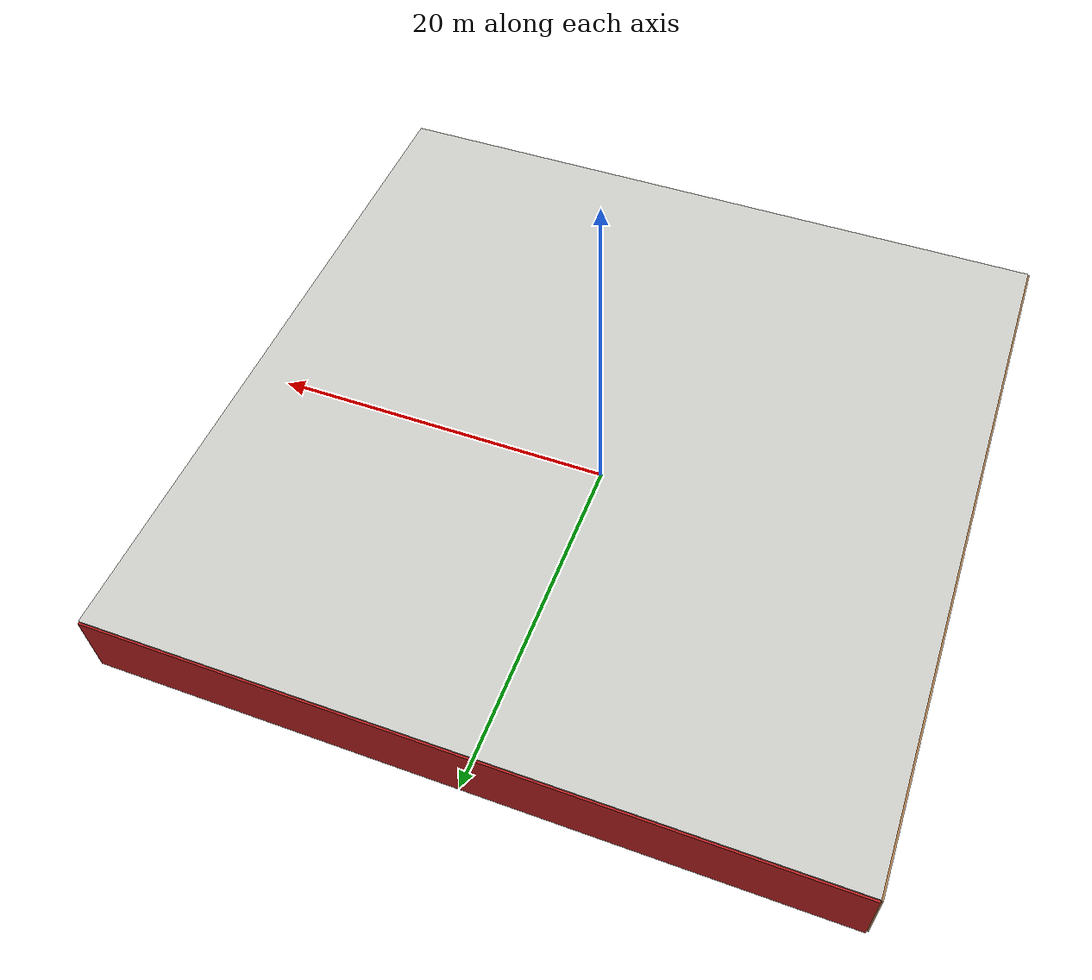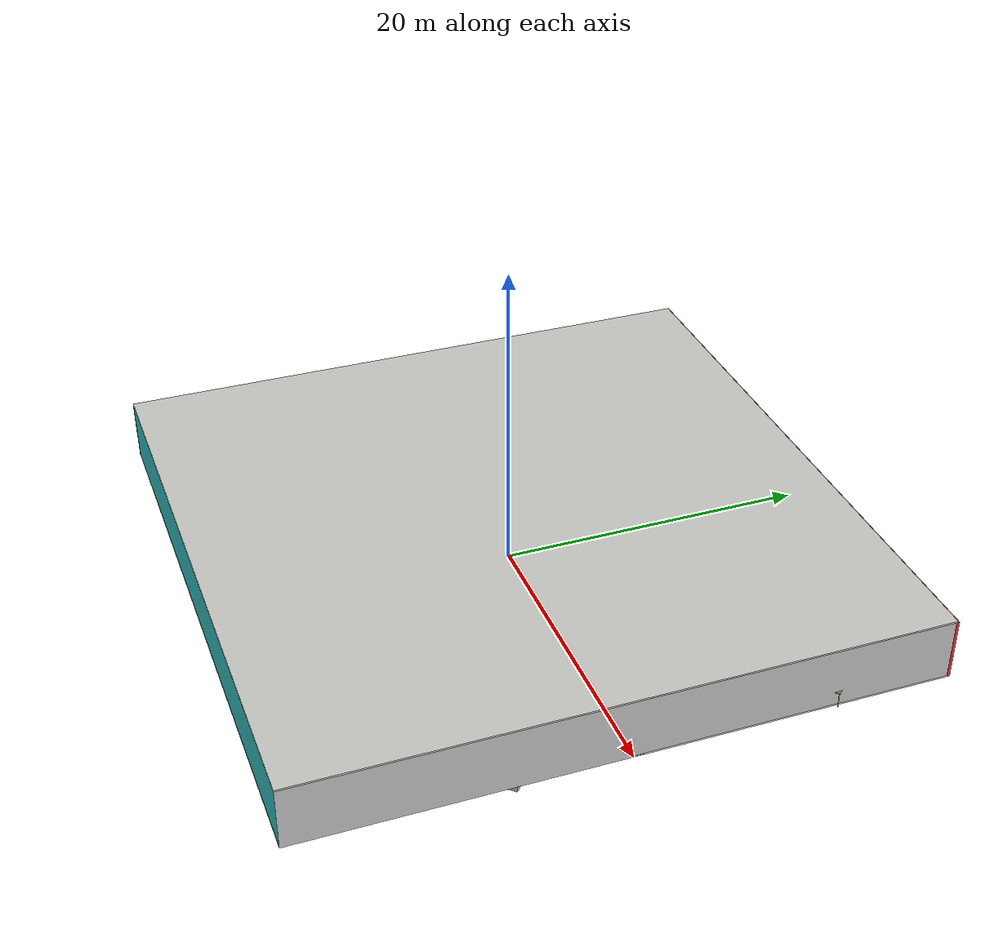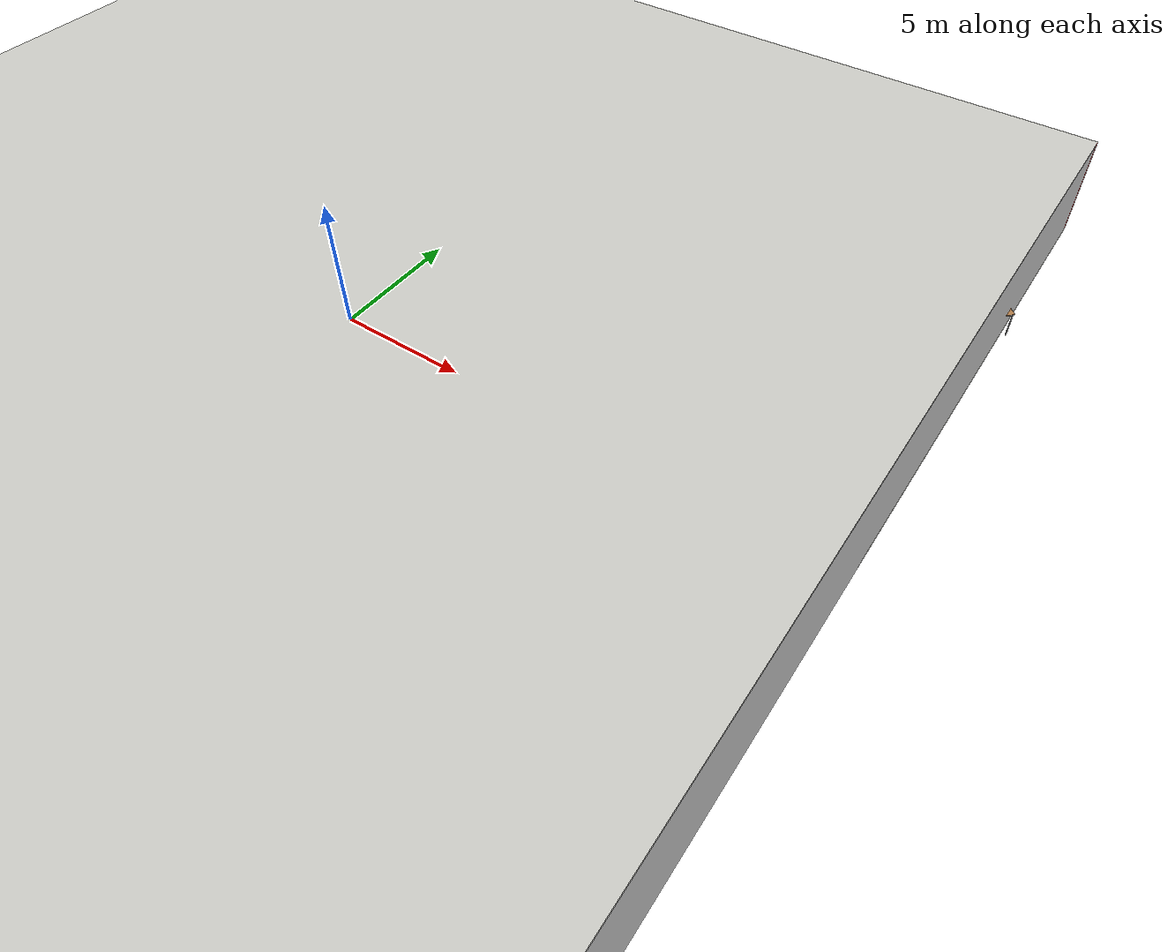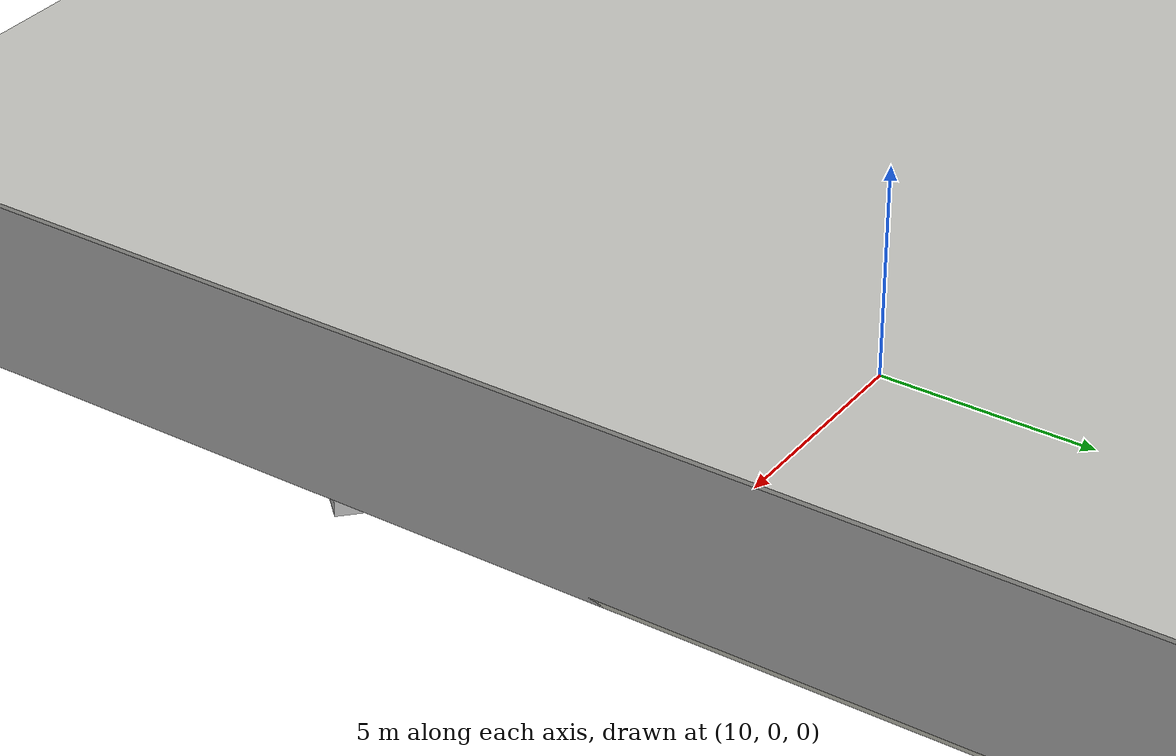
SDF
<sdf version="1.4">
 <world name="default">
  <physics type="ode">
   <max_step_size>0.001</max_step_size>
   <real_time_factor>1</real_time_factor>
   <real_time_update_rate>1000</real_time_update_rate>
   <gravity>0 0 -9.8</gravity>
  </physics>
  <scene><ambient>0.4 0.4 0.4 1</ambient><background>0.7 0.7 0.7 1</background><shadows>1</shadows></scene>
  <model name="Surrounding">
   <static>1</static>
   <link name="Ceiling">
    <collision name="Ceiling_Collision"><geometry><box><size>40 40 0.1</size></box></geometry></collision>
    <visual name="Ceiling_Visual">
     <geometry><box><size>40 40 0.1</size></box></geometry>
     <material>
      <script><uri>file://media/materials/scripts/gazebo.material</uri><name>Gazebo/CeilingTiled</name></script>
     </material>
    </visual>
    <pose>0 0 4.05 0 0 0</pose>
   </link>
   <link name="Wall_South">
    <collision name="Wall_South_Collision">
     <geometry><box><size>40 0 4</size></box></geometry>
     <pose>0 0 2 0 -0 0</pose>
    </collision>
    <visual name="Wall_South_Visual">
     <pose>0 0 2 0 -0 0</pose>
     <geometry><box><size>40 0 4</size></box></geometry>
     <material>
      <script><uri>file://media/materials/scripts/gazebo.material</uri><name>Gazebo/TurquoiseGlow</name></script>
     </material>
    </visual>
    <velocity_decay><linear>0</linear><angular>0</angular></velocity_decay>
    <pose>0 -20 0 0 -0 0</pose>
   </link>
   <link name="Wall_East">
    <collision name="Wall_21_Collision">
     <geometry><box><size>40 0 4</size></box></geometry>
     <pose>0 0 2 0 -0 0</pose>
    </collision>
    <visual name="Wall_21_Visual">
     <pose>0 0 2 0 -0 0</pose>
     <geometry><box><size>40 0 4</size></box></geometry>
     <material>
      <script><uri>file://media/materials/scripts/gazebo.material</uri><name>Gazebo/LightOn</name></script>
     </material>
    </visual>
    <velocity_decay><linear>0</linear><angular>0</angular></velocity_decay>
    <pose>20 0 0 0 -0 1.5708</pose>
   </link>
   <link name="Wall_North">
    <collision name="Wall_22_Collision">
     <geometry><box><size>40 0.2 4</size></box></geometry>
     <pose>0 0 2 0 -0 0</pose>
    </collision>
    <visual name="Wall_22_Visual">
     <pose>0 0 2 0 -0 0</pose>
     <geometry><box><size>40 0.2 4</size></box></geometry>
     <material>
      <script><uri>file://media/materials/scripts/gazebo.material</uri><name>Gazebo/Red</name></script>
     </material>
    </visual>
    <velocity_decay><linear>0</linear><angular>0</angular></velocity_decay>
    <pose>0 20 0 0 -0 0</pose>
   </link>
   <link name="Wall_West">
    <collision name="Wall_23_Collision">
     <geometry><box><size>40 0.2 4</size></box></geometry>
     <pose>0 0 2 0 -0 0</pose>
    </collision>
    <visual name="Wall_23_Visual">
     <pose>0 0 2 0 -0 0</pose>
     <geometry><box><size>40 0.2 4</size></box></geometry>
     <material>
      <script><uri>file://media/materials/scripts/gazebo.material</uri><name>Gazebo/WoodPallet</name></script>
     </material>
    </visual>
    <velocity_decay><linear>0</linear><angular>0</angular></velocity_decay>
    <pose>-20 0 0 0 0 -1.5708</pose>
   </link>
   <link name="Ground_link">
    <collision name="collision">
     <pose>0 0 .05 0 -0 0</pose>
     <geometry><box><size>40 40 0.1</size></box></geometry>
    </collision>
    <visual name="visual">
     <pose>0 0 .05 0 -0 0</pose>
     <geometry><box><size>40 40 0.1</size></box></geometry>
     <material>
      <script><uri>file://media/materials/scripts/gazebo.material</uri><name>Gazebo/PaintedWall</name></script>
     </material>
    </visual>
   </link>
   <static>1</static>
  </model>
  <spherical_coordinates>
   <surface_model>EARTH_WGS84</surface_model>
   <latitude_deg>0</latitude_deg>
   <longitude_deg>0</longitude_deg>
   <elevation>0</elevation>
   <heading_deg>0</heading_deg>
  </spherical_coordinates>
  <light name="lightball_0" type="diffuse">
   <diffuse>0.8 0.8 0.8 1</diffuse>
   <specular>0.2 0.2 0.2 1</specular>
   <attenuation>
    <range>100</range>
    <constant>0.7</constant>
    <linear>0.01</linear>
    <quadratic>0.001</quadratic>
   </attenuation>
   <direction>-0.5 0.1 -0.9</direction>
   <pose>-15.1060585806 8.80802189689 2.64684093676 0 0 0</pose>
  </light>
  <light name="lightball_1" type="diffuse">
   <diffuse>0.8 0.8 0.8 1</diffuse>
   <specular>0.2 0.2 0.2 1</specular>
   <attenuation>
    <range>100</range>
    <constant>0.7</constant>
    <linear>0.01</linear>
    <quadratic>0.001</quadratic>
   </attenuation>
   <direction>-0.5 0.1 -0.9</direction>
   <pose>18.8923375781 -10.4218058834 2.85565858466 0 0 0</pose>
  </light>
  <light name="lightball_2" type="diffuse">
   <diffuse>0.8 0.8 0.8 1</diffuse>
   <specular>0.2 0.2 0.2 1</specular>
   <attenuation>
    <range>100</range>
    <constant>0.7</constant>
    <linear>0.01</linear>
    <quadratic>0.001</quadratic>
   </attenuation>
   <direction>-0.5 0.1 -0.9</direction>
   <pose>4.14953747044 8.79982437456 2.82916136051 0 0 0</pose>
  </light>
  <light name="lightball_3" type="diffuse">
   <diffuse>0.8 0.8 0.8 1</diffuse>
   <specular>0.2 0.2 0.2 1</specular>
   <attenuation>
    <range>100</range>
    <constant>0.7</constant>
    <linear>0.01</linear>
    <quadratic>0.001</quadratic>
   </attenuation>
   <direction>-0.5 0.1 -0.9</direction>
   <pose>-12.6094949963 -4.08520903376 2.87650702533 0 0 0</pose>
  </light>
  <light name="lightball_4" type="diffuse">
   <diffuse>0.8 0.8 0.8 1</diffuse>
   <specular>0.2 0.2 0.2 1</specular>
   <attenuation>
    <range>100</range>
    <constant>0.7</constant>
    <linear>0.01</linear>
    <quadratic>0.001</quadratic>
   </attenuation>
   <direction>-0.5 0.1 -0.9</direction>
   <pose>16.3130788007 -19.0454835485 3.09926105743 0 0 0</pose>
  </light>
  <light name="lightball_5" type="diffuse">
   <diffuse>0.8 0.8 0.8 1</diffuse>
   <specular>0.2 0.2 0.2 1</specular>
   <attenuation>
    <range>100</range>
    <constant>0.7</constant>
    <linear>0.01</linear>
    <quadratic>0.001</quadratic>
   </attenuation>
   <direction>-0.5 0.1 -0.9</direction>
   <pose>10.339748085 -18.8105875021 3.12025968797 0 0 0</pose>
  </light>
  <light name="lightball_6" type="diffuse">
   <diffuse>0.8 0.8 0.8 1</diffuse>
   <specular>0.2 0.2 0.2 1</specular>
   <attenuation>
    <range>100</range>
    <constant>0.7</constant>
    <linear>0.01</linear>
    <quadratic>0.001</quadratic>
   </attenuation>
   <direction>-0.5 0.1 -0.9</direction>
   <pose>-3.64691055758 -17.3923188097 3.38945764784 0 0 0</pose>
  </light>
  <light name="lightball_7" type="diffuse">
   <diffuse>0.8 0.8 0.8 1</diffuse>
   <specular>0.2 0.2 0.2 1</specular>
   <attenuation>
    <range>100</range>
    <constant>0.7</constant>
    <linear>0.01</linear>
    <quadratic>0.001</quadratic>
   </attenuation>
   <direction>-0.5 0.1 -0.9</direction>
   <pose>-0.39716640111 -12.0627073449 1.82502695363 0 0 0</pose>
  </light>
  <light name="lightball_8" type="diffuse">
   <diffuse>0.8 0.8 0.8 1</diffuse>
   <specular>0.2 0.2 0.2 1</specular>
   <attenuation>
    <range>100</range>
    <constant>0.7</constant>
    <linear>0.01</linear>
    <quadratic>0.001</quadratic>
   </attenuation>
   <direction>-0.5 0.1 -0.9</direction>
   <pose>2.3379183887 13.3054670823 1.32242597449 0 0 0</pose>
  </light>
  <light name="lightball_9" type="diffuse">
   <diffuse>0.8 0.8 0.8 1</diffuse>
   <specular>0.2 0.2 0.2 1</specular>
   <attenuation>
    <range>100</range>
    <constant>0.7</constant>
    <linear>0.01</linear>
    <quadratic>0.001</quadratic>
   </attenuation>
   <direction>-0.5 0.1 -0.9</direction>
   <pose>5.46918760555 -6.96232680918 1.1895842192 0 0 0</pose>
  </light>
  <include>
   <uri>model://robocup_3Dsim_goal</uri>
   <pose>-18.0272785018 -18.2181641354 0 0 0 1.62536753824</pose>
  </include>
  <include>
   <uri>model://textured_shapes</uri>
   <pose>-16.8163920314 -14.3217412577 0 0 0 0.839530064103</pose>
  </include>
  <include><uri>model://table</uri><pose>-17.0026523923 -9.16931761423 0 0 0 3.08551243429</pose></include>
  <include><uri>model://cabinet</uri><pose>-18.3870546569 -6.62163289674 0 0 0 1.11150648805</pose></include>
  <include><uri>model://table</uri><pose>-17.9063781499 15.8884798342 0 0 0 0.0927626152414</pose></include>
  <include>
   <uri>model://robocup_3Dsim_goal</uri>
   <pose>-13.8549652981 -7.31421019342 0 0 0 2.43657945169</pose>
  </include>
  <include>
   <uri>model://textured_shapes</uri>
   <pose>-15.3141753367 3.42559529701 0 0 0 0.849068391219</pose>
  </include>
  <include>
   <uri>model://construction_cone</uri>
   <pose>-9.10948389478 -14.6273074207 0 0 0 2.74972954043</pose>
  </include>
  <include><uri>model://table</uri><pose>-8.98908387355 -6.64507723324 0 0 0 2.16029931027</pose></include>
  <include><uri>model://table</uri><pose>-6.1742878082 -11.928493908 0 0 0 0.156079683222</pose></include>
  <include>
   <uri>model://textured_shapes</uri>
   <pose>-5.20033232287 5.71745577002 0 0 0 2.17368017238</pose>
  </include>
  <include><uri>model://cabinet</uri><pose>-5.95500980316 10.4828582762 0 0 0 2.01669581547</pose></include>
  <include>
   <uri>model://robocup_3Dsim_goal</uri>
   <pose>-1.54760747108 -10.7897558218 0 0 0 2.82014686935</pose>
  </include>
  <include><uri>model://cabinet</uri><pose>-2.60287087419 -7.78658114068 0 0 0 0.05332999946</pose></include>
  <include><uri>model://table</uri><pose>-2.39876685555 17.8031502954 0 0 0 2.17059258234</pose></include>
  <include><uri>model://table</uri><pose>1.00684131953 -18.5375204883 0 0 0 2.74279899122</pose></include>
  <include><uri>model://cabinet</uri><pose>1.4245193562 -3.45639448876 0 0 0 0.607865037521</pose></include>
  <include><uri>model://cabinet</uri><pose>0.689181288863 8.75744490065 0 0 0 0.815770684809</pose></include>
  <include><uri>model://table</uri><pose>2.45224436887 1.65751872454 0 0 0 1.29895890577</pose></include>
  <include>
   <uri>model://construction_cone</uri>
   <pose>3.94437095021 19.4805209983 0 0 0 0.924174656623</pose>
  </include>
  <include><uri>model://table</uri><pose>6.03606337974 -8.67249202299 0 0 0 2.8091438946</pose></include>
  <include>
   <uri>model://construction_cone</uri>
   <pose>7.21785498431 -2.91401086945 0 0 0 0.20072890464</pose>
  </include>
  <include><uri>model://cabinet</uri><pose>5.68369738026 1.14310919559 0 0 0 2.93373048703</pose></include>
  <include><uri>model://cabinet</uri><pose>10.088777377 -18.1385273603 0 0 0 3.03504192173</pose></include>
  <include><uri>model://cabinet</uri><pose>9.54958183757 -6.36591439549 0 0 0 0.566501300141</pose></include>
  <include><uri>model://table</uri><pose>10.4462634812 15.9973702745 0 0 0 2.90333201375</pose></include>
  <include>
   <uri>model://robocup_3Dsim_goal</uri>
   <pose>12.2845062294 -5.58952507316 0 0 0 3.04655571343</pose>
  </include>
  <include>
   <uri>model://robocup_3Dsim_goal</uri>
   <pose>12.9951790425 0.636791497348 0 0 0 2.90138074864</pose>
  </include>
  <include>
   <uri>model://construction_cone</uri>
   <pose>15.1734223956 -10.3627163643 0 0 0 1.03405276016</pose>
  </include>
  <include><uri>model://cabinet</uri><pose>16.5104616252 -8.77373484003 0 0 0 0.0683460875359</pose></include>
  <include>
   <uri>model://textured_shapes</uri>
   <pose>16.4323456083 14.7785660512 0 0 0 1.07114913046</pose>
  </include>
  <include>
   <uri>model://textured_shapes</uri>
   <pose>18.0807445209 -5.76094511843 0 0 0 0.814656257947</pose>
  </include>
  <include><uri>model://table</uri><pose>19.429695009 12.3846699206 0 0 0 0.818878528548</pose></include>
 </world>
</sdf>

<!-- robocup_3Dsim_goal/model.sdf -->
<sdf version="1.5">
  <model name="robocup_3d_goal">
    <static>true</static>
    <link name="left_post">
      <pose>0 1.05 0.45 0 0 0</pose>
      <collision name="collision">
        <geometry>
          <cylinder>
            <radius>0.05</radius>
            <length>0.9</length>
          </cylinder>
        </geometry>
      </collision>
      <visual name="visual">
        <geometry>
          <cylinder>
            <radius>0.05</radius>
            <length>0.9</length>
          </cylinder>
        </geometry>
        <material>
          <script>
            <uri>file://media/materials/scripts/gazebo.material</uri>
            <name>Gazebo/ZincYellow</name>
          </script>
        </material>
      </visual>
    </link>
    <link name="left_support_horiz_lower">
      <pose>0.30 1.05 0.01 0 0 0</pose>
      <collision name="collision">
        <geometry>
          <box>
            <size>0.50 0.02 0.02</size>
          </box>
        </geometry>
      </collision>
      <visual name="visual">
        <geometry>
          <box>
            <size>0.50 0.02 0.02</size>
          </box>
        </geometry>
        <material>
          <script>
            <uri>file://media/materials/scripts/gazebo.material</uri>
            <name>Gazebo/White</name>
          </script>
        </material>
      </visual>
    </link>
    <link name="left_support_horiz_upper">
      <pose>0.30 1.05 0.79 0 0 0</pose>
      <collision name="collision">
        <geometry>
          <box>
            <size>0.50 0.02 0.02</size>
          </box>
        </geometry>
      </collision>
      <visual name="visual">
        <geometry>
          <box>
            <size>0.50 0.02 0.02</size>
          </box>
        </geometry>
        <material>
          <script>
            <uri>file://media/materials/scripts/gazebo.material</uri>
            <name>Gazebo/White</name>
          </script>
        </material>
      </visual>
    </link>
    <link name="left_support_vertical">
      <pose>0.56 1.05 0.4 0 1.5708 0</pose>
      <collision name="collision">
        <geometry>
          <box>
            <size>0.80 0.02 0.02</size>
          </box>
        </geometry>
      </collision>
      <visual name="visual">
        <geometry>
          <box>
            <size>0.80 0.02 0.02</size>
          </box>
        </geometry>
        <material>
          <script>
            <uri>file://media/materials/scripts/gazebo.material</uri>
            <name>Gazebo/White</name>
          </script>
        </material>
      </visual>
    </link>
    <link name="right_support_horiz_lower">
      <pose>0.30 -1.05 0.01 0 0 0</pose>
      <collision name="collision">
        <geometry>
          <box>
            <size>0.50 0.02 0.02</size>
          </box>
        </geometry>
      </collision>
      <visual name="visual">
        <geometry>
          <box>
            <size>0.50 0.02 0.02</size>
          </box>
        </geometry>
        <material>
          <script>
            <uri>file://media/materials/scripts/gazebo.material</uri>
            <name>Gazebo/White</name>
          </script>
        </material>
      </visual>
    </link>
    <link name="right_support_horiz_upper">
      <pose>0.30 -1.05 0.79 0 0 0</pose>
      <collision name="collision">
        <geometry>
          <box>
            <size>0.50 0.02 0.02</size>
          </box>
        </geometry>
      </collision>
      <visual name="visual">
        <geometry>
          <box>
            <size>0.50 0.02 0.02</size>
          </box>
        </geometry>
        <material>
          <script>
            <uri>file://media/materials/scripts/gazebo.material</uri>
            <name>Gazebo/White</name>
          </script>
        </material>
      </visual>
    </link>
    <link name="right_support_vertical">
      <pose>0.56 -1.05 0.4 0 1.5708 0</pose>
      <collision name="collision">
        <geometry>
          <box>
            <size>0.80 0.02 0.02</size>
          </box>
        </geometry>
      </collision>
      <visual name="visual">
        <geometry>
          <box>
            <size>0.80 0.02 0.02</size>
          </box>
        </geometry>
        <material>
          <script>
            <uri>file://media/materials/scripts/gazebo.material</uri>
            <name>Gazebo/White</name>
          </script>
        </material>
      </visual>
    </link>
    <link name="center_support_horiz_lower">
      <pose>0.56 0 0.01 0 1.5708 0</pose>
      <collision name="collision">
        <geometry>
          <box>
            <size>0.02 2.08 0.02</size>
          </box>
        </geometry>
      </collision>
      <visual name="visual">
        <geometry>
          <box>
            <size>0.02 2.08 0.02</size>
          </box>
        </geometry>
        <material>
          <script>
            <uri>file://media/materials/scripts/gazebo.material</uri>
            <name>Gazebo/White</name>
          </script>
        </material>
      </visual>
    </link>
    <link name="center_support_horiz_upper">
      <pose>0.56 0 0.79 0 1.5708 0</pose>
      <collision name="collision">
        <geometry>
          <box>
            <size>0.02 2.08 0.02</size>
          </box>
        </geometry>
      </collision>
      <visual name="visual">
        <geometry>
          <box>
            <size>0.02 2.08 0.02</size>
          </box>
        </geometry>
        <material>
          <script>
            <uri>file://media/materials/scripts/gazebo.material</uri>
            <name>Gazebo/White</name>
          </script>
        </material>
      </visual>
    </link>
    <link name="right_post">
      <pose>0 -1.05 0.45 0 0 0</pose>
      <collision name="collision">
        <geometry>
          <cylinder>
            <radius>0.05</radius>
            <length>0.9</length>
          </cylinder>
        </geometry>
      </collision>
      <visual name="visual">
        <geometry>
          <cylinder>
            <radius>0.05</radius>
            <length>0.9</length>
          </cylinder>
        </geometry>
        <material>
          <script>
            <uri>file://media/materials/scripts/gazebo.material</uri>
            <name>Gazebo/ZincYellow</name>
          </script>
        </material>
      </visual>
    </link>
    <link name="crossbar">
      <pose>0 0 0.85 1.57 1.57 0</pose>
      <collision name="collision">
        <geometry>
          <cylinder>
            <radius>0.05</radius>
            <length>2.0</length>
          </cylinder>
        </geometry>
      </collision>
      <visual name="visual">
        <geometry>
          <cylinder>
            <radius>0.05</radius>
            <length>2.0</length>
          </cylinder>
        </geometry>
        <material>
          <script>
            <uri>file://media/materials/scripts/gazebo.material</uri>
            <name>Gazebo/ZincYellow</name>
          </script>
        </material>
      </visual>
    </link>
    <link name="center_net">
      <pose>0.56 0 0.40 0 0 0</pose>
      <collision name="collision">
        <geometry>
          <box>
            <size>0.01 2.1 0.80</size>
          </box>
        </geometry>
      </collision>
      <visual name="visual">
        <geometry>
          <box>
            <size>0.01 2.1 0.80</size>
          </box>
        </geometry>
        <material>
          <script>
            <uri>model://../model_source/models/robocup09_spl_field/materials/scripts/</uri>
            <uri>model://../model_source/models/robocup09_spl_field/materials/textures/</uri>
            <name>RoboCup/Net</name>
          </script>
        </material>
      </visual>
    </link>
    <link name="left_net">
      <pose>0.30 1.05 0.40 0 0 0</pose>
      <collision name="collision">
        <geometry>
          <box>
            <size>0.50 0.01 0.76</size>
          </box>
        </geometry>
      </collision>
      <visual name="visual">
        <geometry>
          <box>
            <size>0.50 0.01 0.76</size>
          </box>
        </geometry>
        <material>
          <script>
            <uri>model://../model_source/models/robocup09_spl_field/materials/scripts/</uri>
            <uri>model://../model_source/models/robocup09_spl_field/materials/textures/</uri>
            <name>RoboCup/Net</name>
          </script>
        </material>
      </visual>
    </link>
    <link name="right_net">
      <pose>0.30 -1.05 0.40 0 0 0</pose>
      <collision name="collision">
        <geometry>
          <box>
            <size>0.50 0.01 0.76</size>
          </box>
        </geometry>
      </collision>
      <visual name="visual">
        <geometry>
          <box>
            <size>0.50 0.01 0.76</size>
          </box>
        </geometry>
        <material>
          <script>
            <uri>model://../model_source/models/robocup09_spl_field/materials/scripts/</uri>
            <uri>model://../model_source/models/robocup09_spl_field/materials/textures/</uri>
            <name>RoboCup/Net</name>
          </script>
        </material>
      </visual>
    </link>
  </model>
</sdf>

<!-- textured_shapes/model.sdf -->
<sdf version="1.6">
  <model name="textured_shapes">
    <pose>0 0 0.5 0 0 0</pose>
    <link name="box">
      <pose>0 -1.5 0 0 0 0</pose>
      <collision name="collision">
        <geometry>
          <box>
            <size>1 1 1</size>
          </box>
        </geometry>
      </collision>
      <visual name="visual">
        <geometry>
          <box>
            <size>1 1 1</size>
          </box>
        </geometry>
        <material>
          <script>
            <uri>model://../model_source/models/textured_shapes/materials/scripts</uri>
            <uri>model://../model_source/models/textured_shapes/materials/textures</uri>
            <name>TexturedShape/Squares</name>
          </script>
        </material>
      </visual>
    </link>
    <link name="sphere">
      <collision name="collision">
        <geometry>
          <sphere>
            <radius>0.5</radius>
          </sphere>
        </geometry>
      </collision>
      <visual name="visual">
        <geometry>
          <sphere>
            <radius>0.5</radius>
          </sphere>
        </geometry>
        <material>
          <script>
            <uri>model://../model_source/models/textured_shapes/materials/scripts</uri>
            <uri>model://../model_source/models/textured_shapes/materials/textures</uri>
            <name>TexturedShape/Squares</name>
          </script>
        </material>
      </visual>
    </link>
    <link name="cylinder">
      <pose>0 1.5 0 0 0 0</pose>
      <collision name="collision">
        <geometry>
          <cylinder>
            <radius>0.5</radius>
            <length>1</length>
          </cylinder>
        </geometry>
      </collision>
      <visual name="visual">
        <geometry>
          <cylinder>
            <radius>0.5</radius>
            <length>1</length>
          </cylinder>
        </geometry>
        <material>
          <script>
            <uri>model://../model_source/models/textured_shapes/materials/scripts</uri>
            <uri>model://../model_source/models/textured_shapes/materials/textures</uri>
            <name>TexturedShape/Squares</name>
          </script>
        </material>
      </visual>
    </link>
  </model>
</sdf>

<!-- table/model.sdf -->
<sdf version="1.5">
  <model name="table">
    <static>true</static>
    <link name="link">
      <collision name="surface">
        <pose>0 0 1.0 0 0 0</pose>
        <geometry>
          <box>
            <size>1.5 0.8 0.03</size>
          </box>
        </geometry>
        <surface>
          <friction>
            <ode>
              <mu>0.6</mu>
              <mu2>0.6</mu2>
            </ode>
          </friction>
        </surface>
      </collision>
      <visual name="visual1">
        <pose>0 0 1.0 0 0 0</pose>
        <geometry>
          <box>
            <size>1.5 0.8 0.03</size>
          </box>
        </geometry>
        <material>
          <script>
            <uri>model://media/materials/scripts/gazebo.material</uri>
            <name>Gazebo/Wood</name>
          </script>
        </material>
      </visual>
      <collision name="front_left_leg">
        <pose>0.68 0.38 0.5 0 0 0</pose>
        <geometry>
          <cylinder>
            <radius>0.02</radius>
            <length>1.0</length>
          </cylinder>
        </geometry>
      </collision>
      <visual name="front_left_leg">
        <pose>0.68 0.38 0.5 0 0 0</pose>
        <geometry>
          <cylinder>
            <radius>0.02</radius>
            <length>1.0</length>
          </cylinder>
        </geometry>
        <material>
          <script>
            <uri>model://media/materials/scripts/gazebo.material</uri>
            <name>Gazebo/Grey</name>
          </script>
        </material>
      </visual>
      <collision name="front_right_leg">
        <pose>0.68 -0.38 0.5 0 0 0</pose>
        <geometry>
          <cylinder>
            <radius>0.02</radius>
            <length>1.0</length>
          </cylinder>
        </geometry>
      </collision>
      <visual name="front_right_leg">
        <pose>0.68 -0.38 0.5 0 0 0</pose>
        <geometry>
          <cylinder>
            <radius>0.02</radius>
            <length>1.0</length>
          </cylinder>
        </geometry>
        <material>
          <script>
            <uri>model://media/materials/scripts/gazebo.material</uri>
            <name>Gazebo/Grey</name>
          </script>
        </material>
      </visual>
      <collision name="back_right_leg">
        <pose>-0.68 -0.38 0.5 0 0 0</pose>
        <geometry>
          <cylinder>
            <radius>0.02</radius>
            <length>1.0</length>
          </cylinder>
        </geometry>
      </collision>
      <visual name="back_right_leg">
        <pose>-0.68 -0.38 0.5 0 0 0</pose>
        <geometry>
          <cylinder>
            <radius>0.02</radius>
            <length>1.0</length>
          </cylinder>
        </geometry>
        <material>
          <script>
            <uri>model://media/materials/scripts/gazebo.material</uri>
            <name>Gazebo/Grey</name>
          </script>
        </material>
      </visual>
      <collision name="back_left_leg">
        <pose>-0.68 0.38 0.5 0 0 0</pose>
        <geometry>
          <cylinder>
            <radius>0.02</radius>
            <length>1.0</length>
          </cylinder>
        </geometry>
      </collision>
      <visual name="back_left_leg">
        <pose>-0.68 0.38 0.5 0 0 0</pose>
        <geometry>
          <cylinder>
            <radius>0.02</radius>
            <length>1.0</length>
          </cylinder>
        </geometry>
        <material>
          <script>
            <uri>model://media/materials/scripts/gazebo.material</uri>
            <name>Gazebo/Grey</name>
          </script>
        </material>
      </visual>
    </link>
  </model>
</sdf>

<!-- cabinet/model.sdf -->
<sdf version="1.5">
  <model name="cabinet">
    <static>true</static>
    <link name="cabinet_bottom_plate">
      <inertial>
        <pose>0 0 -1 0 0 0</pose>
        <inertia>
          <ixx>2.050000</ixx>
          <ixy>0</ixy>
          <ixz>0</ixz>
          <iyy>2.050000</iyy>
          <iyz>0</iyz>
          <izz>2.050000</izz>
        </inertia>
        <mass>25.000000</mass>
      </inertial>
      <collision name="cabinet_bottom_plate_geom">
        <pose>0 0 0.010000 0 0 0</pose>
        <geometry>
          <box>
            <size>0.450000 0.450000 0.020000</size>
          </box>
        </geometry>
      </collision>
      <visual name="cabinet_bottom_plate_geom_visual">
        <pose>0 0 0.010000 0 0 0</pose>
        <geometry>
          <box>
            <size>0.450000 0.450000 0.020000</size>
          </box>
        </geometry>
        <material>
          <script>
            <uri>model://media/materials/scripts/gazebo.material</uri>
            <name>Gazebo/Wood</name>
          </script>
        </material>
      </visual>
      <collision name="cabinet_bottom_plate_geom_cabinet_back_plate">
        <pose>0.235000 0 0.510000 0 0 0</pose>
        <geometry>
          <box>
            <size>0.020000 0.450000 1.020000</size>
          </box>
        </geometry>
      </collision>
      <visual name="cabinet_bottom_plate_geom_cabinet_back_plate_visual">
        <pose>0.235000 0 0.510000 0 0 0</pose>
        <geometry>
          <box>
            <size>0.020000 0.450000 1.020000</size>
          </box>
        </geometry>
        <material>
          <script>
            <uri>model://media/materials/scripts/gazebo.material</uri>
            <name>Gazebo/Wood</name>
          </script>
        </material>
      </visual>
      <collision name="cabinet_bottom_plate_geom_cabinet_left_plate">
        <pose>0 0.235000 0.510000 0 0 0</pose>
        <geometry>
          <box>
            <size>0.450000 0.020000 1.020000</size>
          </box>
        </geometry>
      </collision>
      <visual name="cabinet_bottom_plate_geom_cabinet_left_plate_visual">
        <pose>0 0.235000 0.510000 0 0 0</pose>
        <geometry>
          <box>
            <size>0.450000 0.020000 1.020000</size>
          </box>
        </geometry>
        <material>
          <script>
            <uri>model://media/materials/scripts/gazebo.material</uri>
            <name>Gazebo/Wood</name>
          </script>
        </material>
      </visual>
      <collision name="cabinet_bottom_plate_geom_cabinet_middle_plate">
        <pose>0 0 0.510000 0 0 0</pose>
        <geometry>
          <box>
            <size>0.450000 0.450000 0.020000</size>
          </box>
        </geometry>
      </collision>
      <visual name="cabinet_bottom_plate_geom_cabinet_middle_plate_visual">
        <pose>0 0 0.510000 0 0 0</pose>
        <geometry>
          <box>
            <size>0.450000 0.450000 0.020000</size>
          </box>
        </geometry>
        <material>
          <script>
            <uri>model://media/materials/scripts/gazebo.material</uri>
            <name>Gazebo/Wood</name>
          </script>
        </material>
      </visual>
      <collision name="cabinet_bottom_plate_geom_cabinet_right_plate">
        <pose>0 -0.235000 0.510000 0 0 0</pose>
        <geometry>
          <box>
            <size>0.450000 0.020000 1.020000</size>
          </box>
        </geometry>
      </collision>
      <visual name="cabinet_bottom_plate_geom_cabinet_right_plate_visual">
        <pose>0 -0.235000 0.510000 0 0 0</pose>
        <geometry>
          <box>
            <size>0.450000 0.020000 1.020000</size>
          </box>
        </geometry>
        <material>
          <script>
            <uri>model://media/materials/scripts/gazebo.material</uri>
            <name>Gazebo/Wood</name>
          </script>
        </material>
      </visual>
      <collision name="cabinet_bottom_plate_geom_cabinet_top_plate">
        <pose>0 0 1.010000 0 0 0</pose>
        <geometry>
          <box>
            <size>0.450000 0.450000 0.020000</size>
          </box>
        </geometry>
      </collision>
      <visual name="cabinet_bottom_plate_geom_cabinet_top_plate_visual">
        <pose>0 0 1.010000 0 0 0</pose>
        <geometry>
          <box>
            <size>0.450000 0.450000 0.020000</size>
          </box>
        </geometry>
        <material>
          <script>
            <uri>model://media/materials/scripts/gazebo.material</uri>
            <name>Gazebo/Wood</name>
          </script>
        </material>
      </visual>
    </link>
  </model>
</sdf>

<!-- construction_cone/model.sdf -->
<sdf version="1.5">
  <model name="Construction Cone">
    <link name="link">
      <collision name="collision">
        <geometry>
          <mesh>
            <scale>10 10 10</scale>
            <uri>file://isr-testbed/construction_cone/meshes/construction_cone.dae</uri>
          </mesh>
        </geometry>
      </collision>
      <visual name="visual">
        <geometry>
          <mesh>
            <scale>10 10 10</scale>
            <uri>file://isr-testbed/construction_cone/meshes/construction_cone.dae</uri>
          </mesh>
        </geometry>
      </visual>
    </link>
  </model>
</sdf>
